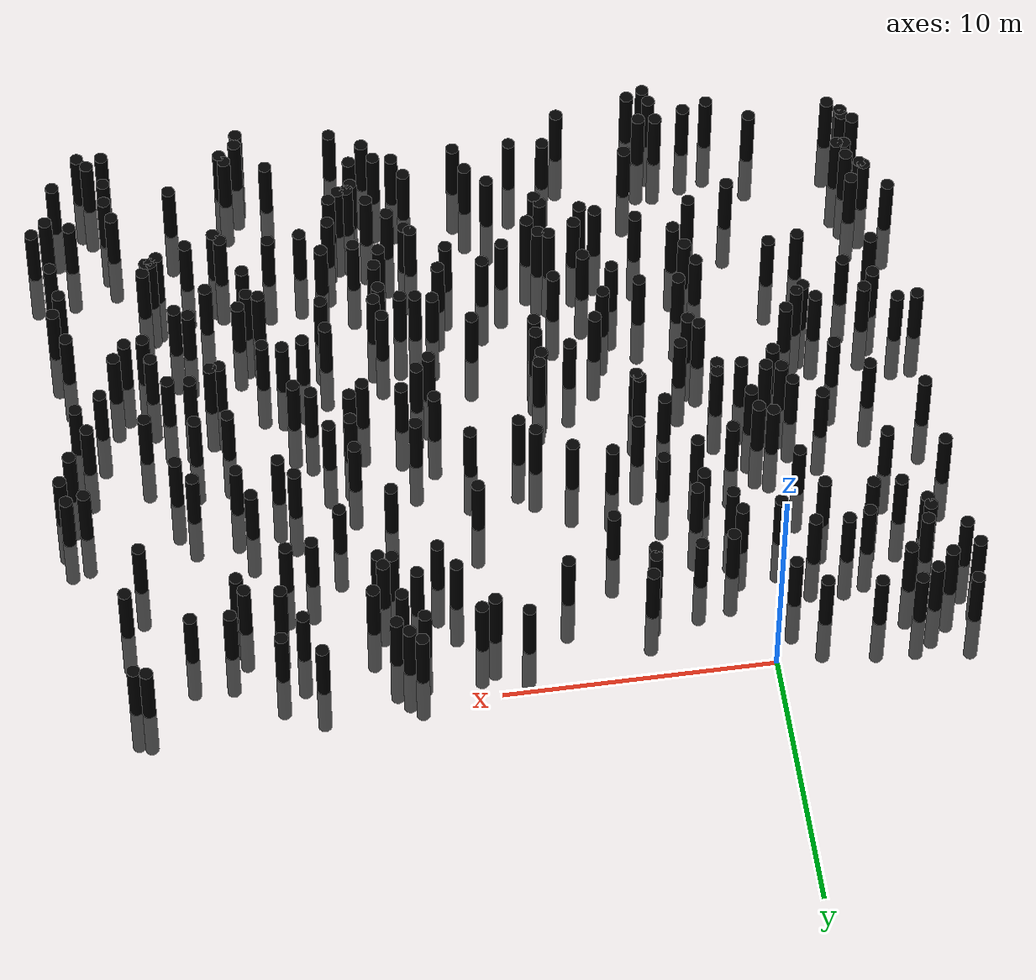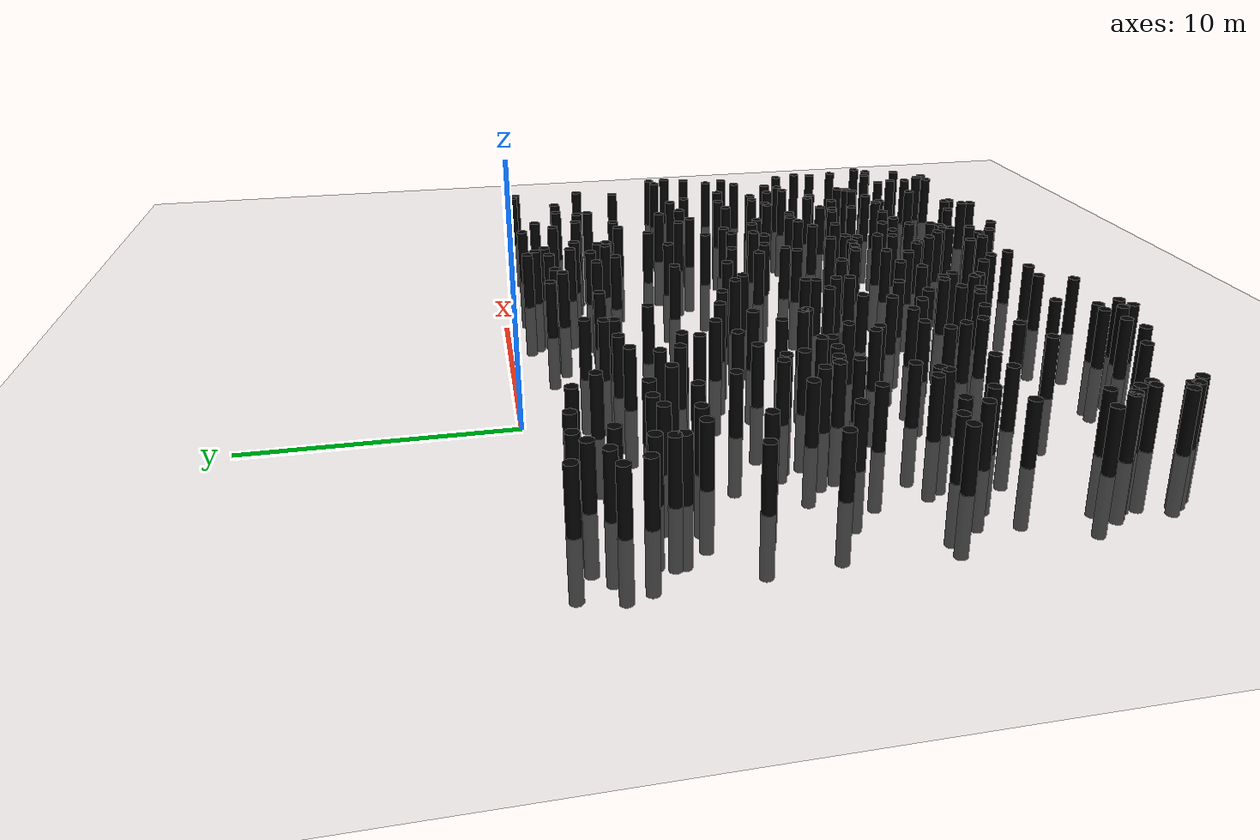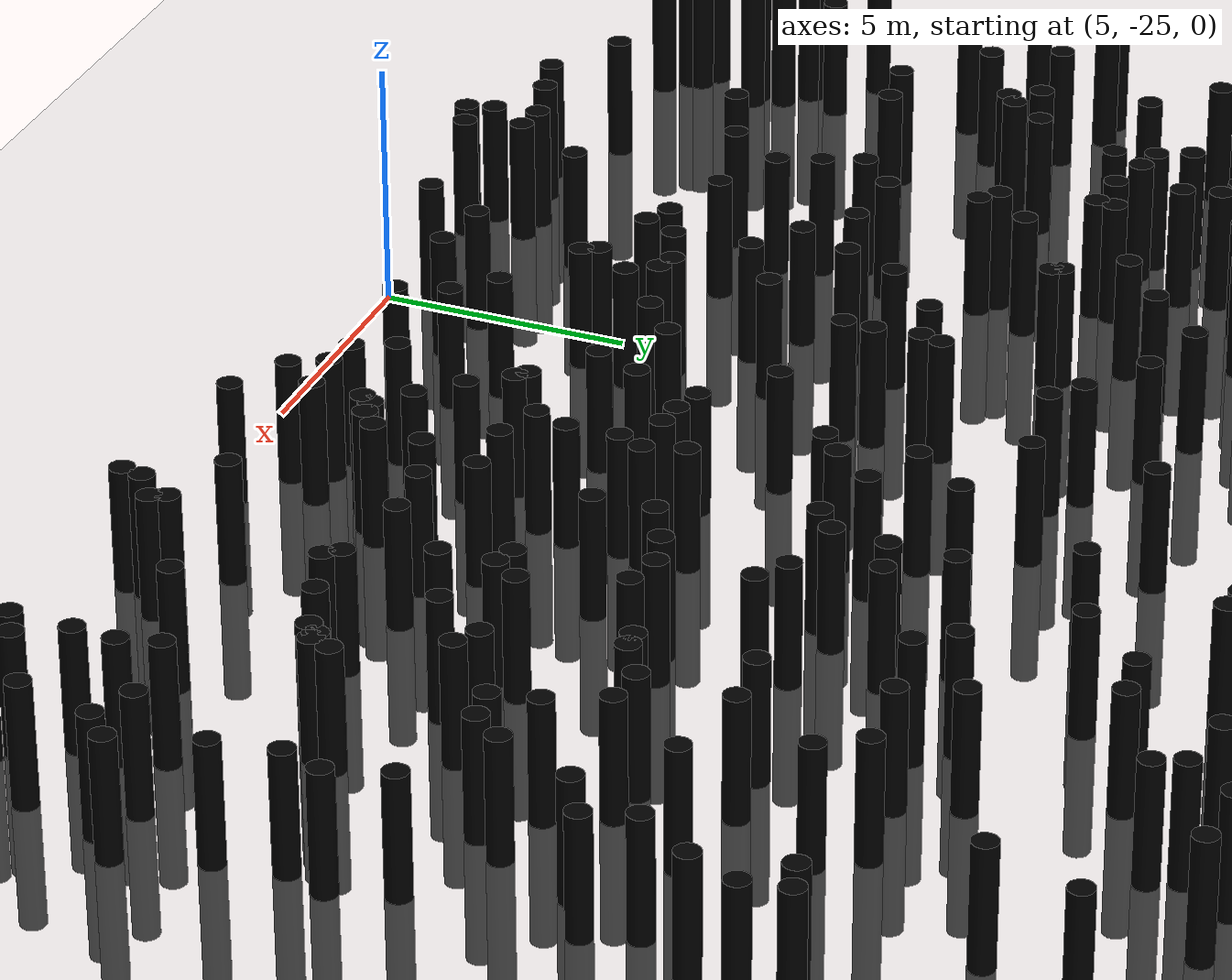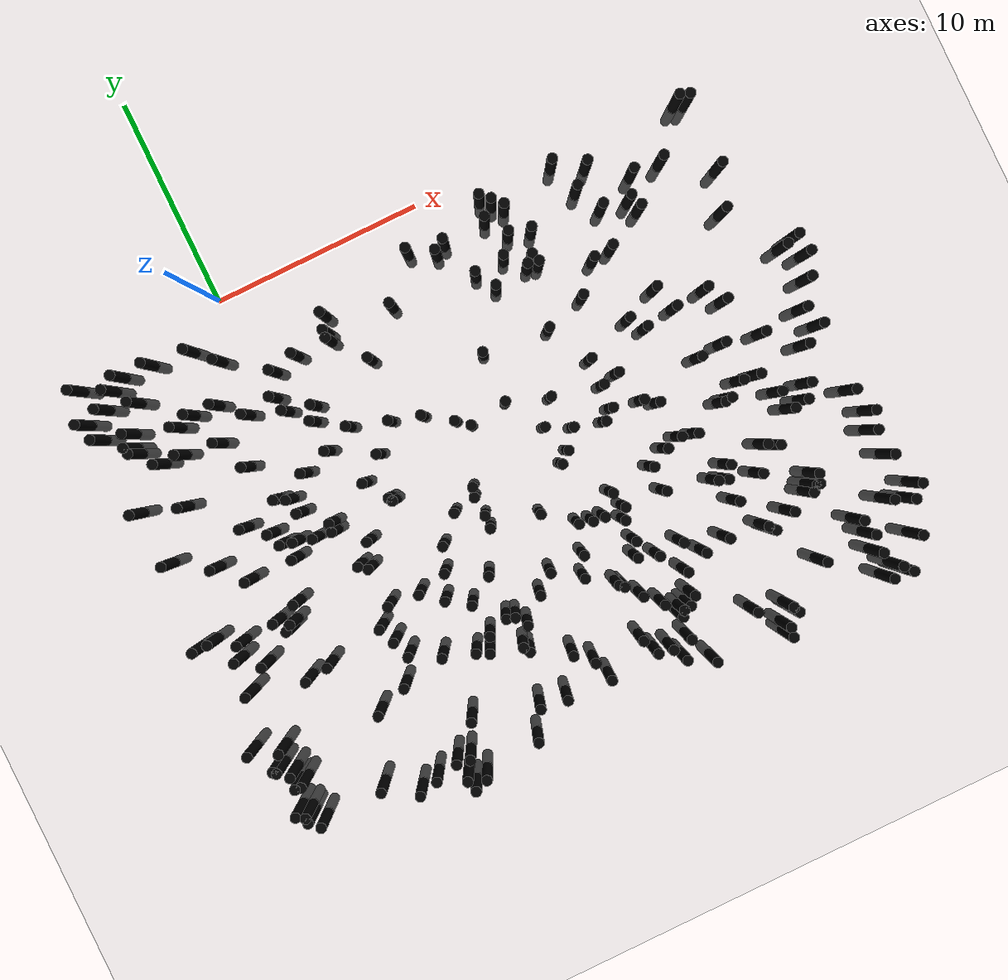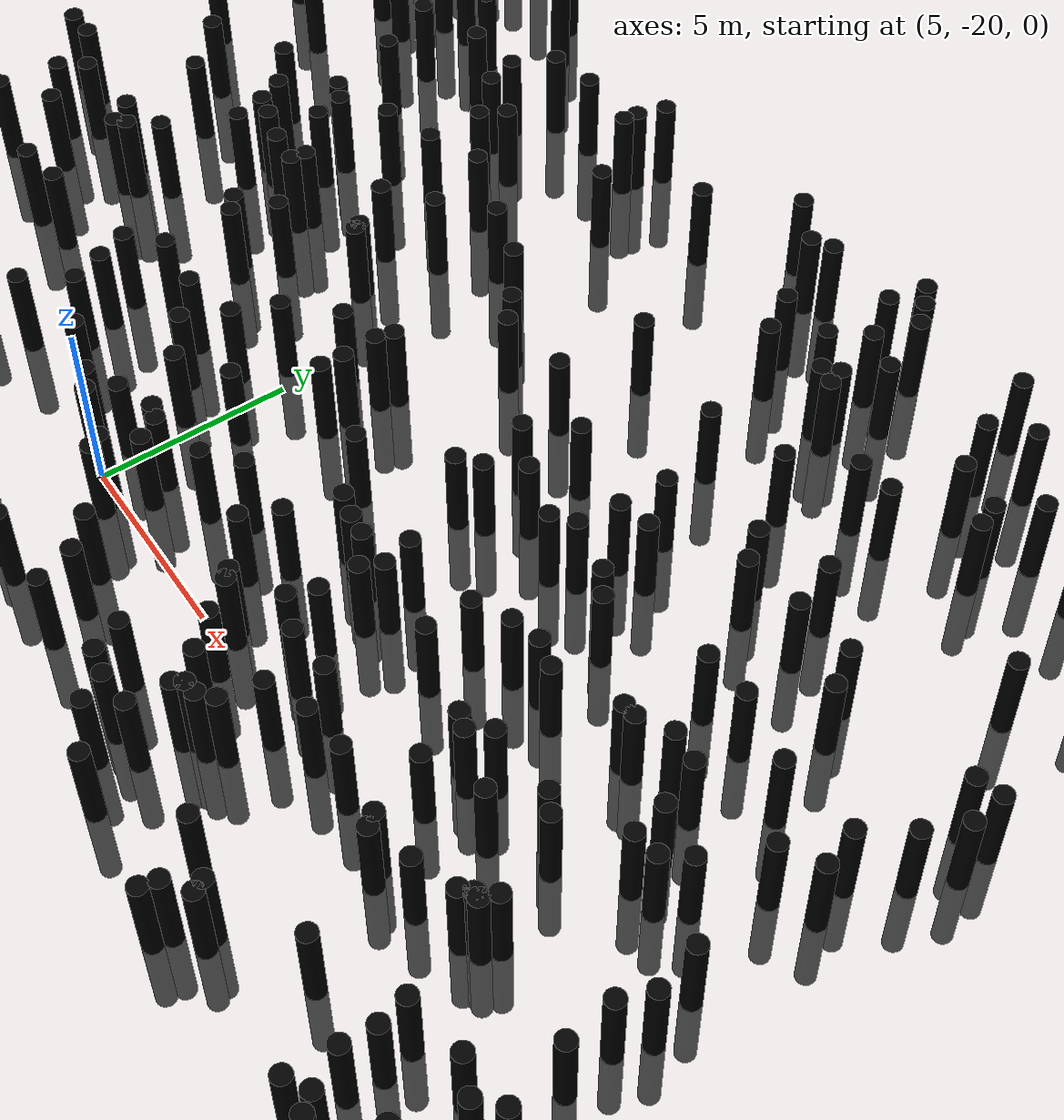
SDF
<sdf version="1.6">
 <world name="huge">
  <include><uri>model://ground_plane</uri></include>
  <include><uri>model://pole</uri><name>pole3</name><pose>14.09 -11.19 0 0 0 0</pose></include>
  <include><uri>model://pole</uri><name>pole19</name><pose>12.08 -23.81 0 0 0 0</pose></include>
  <include><uri>model://pole</uri><name>pole20</name><pose>0.73 -13.72 0 0 0 0</pose></include>
  <include><uri>model://pole</uri><name>pole23</name><pose>21.9 -24.55 0 0 0 0</pose></include>
  <include><uri>model://pole</uri><name>pole24</name><pose>22.41 -15.11 0 0 0 0</pose></include>
  <include><uri>model://pole</uri><name>pole30</name><pose>-0.55 -11.74 0 0 0 0</pose></include>
  <include><uri>model://pole</uri><name>pole31</name><pose>-6.48 -20.39 0 0 0 0</pose></include>
  <include><uri>model://pole</uri><name>pole37</name><pose>22.82 -24.62 0 0 0 0</pose></include>
  <include><uri>model://pole</uri><name>pole39</name><pose>14.92 -19.9 0 0 0 0</pose></include>
  <include><uri>model://pole</uri><name>pole40</name><pose>18.7 -17.82 0 0 0 0</pose></include>
  <include><uri>model://pole</uri><name>pole43</name><pose>17.33 -23.74 0 0 0 0</pose></include>
  <include><uri>model://pole</uri><name>pole49</name><pose>5.61 -13.44 0 0 0 0</pose></include>
  <include><uri>model://pole</uri><name>pole50</name><pose>-7.34 -19.17 0 0 0 0</pose></include>
  <include><uri>model://pole</uri><name>pole52</name><pose>11.39 -13.15 0 0 0 0</pose></include>
  <include><uri>model://pole</uri><name>pole55</name><pose>15.82 -23.26 0 0 0 0</pose></include>
  <include><uri>model://pole</uri><name>pole65</name><pose>-1.07 -2.62 0 0 0 0</pose></include>
  <include><uri>model://pole</uri><name>pole66</name><pose>24.13 -18.29 0 0 0 0</pose></include>
  <include><uri>model://pole</uri><name>pole68</name><pose>-0.86 -9.67 0 0 0 0</pose></include>
  <include><uri>model://pole</uri><name>pole70</name><pose>14.52 -16.67 0 0 0 0</pose></include>
  <include><uri>model://pole</uri><name>pole73</name><pose>19.22 -19.96 0 0 0 0</pose></include>
  <include><uri>model://pole</uri><name>pole74</name><pose>20.77 -19.32 0 0 0 0</pose></include>
  <include><uri>model://pole</uri><name>pole75</name><pose>6.54 -23.1 0 0 0 0</pose></include>
  <include><uri>model://pole</uri><name>pole78</name><pose>11.55 -20.43 0 0 0 0</pose></include>
  <include><uri>model://pole</uri><name>pole80</name><pose>19.45 -3.15 0 0 0 0</pose></include>
  <include><uri>model://pole</uri><name>pole81</name><pose>3.86 -3.96 0 0 0 0</pose></include>
  <include><uri>model://pole</uri><name>pole86</name><pose>18.83 -4.16 0 0 0 0</pose></include>
  <include><uri>model://pole</uri><name>pole87</name><pose>10.99 -19.68 0 0 0 0</pose></include>
  <include><uri>model://pole</uri><name>pole91</name><pose>-2.07 -4.36 0 0 0 0</pose></include>
  <include><uri>model://pole</uri><name>pole92</name><pose>18.54 -11.96 0 0 0 0</pose></include>
  <include><uri>model://pole</uri><name>pole94</name><pose>3.38 -11.76 0 0 0 0</pose></include>
  <include><uri>model://pole</uri><name>pole98</name><pose>0.35 -11.84 0 0 0 0</pose></include>
  <include><uri>model://pole</uri><name>pole100</name><pose>-3.1 -14.72 0 0 0 0</pose></include>
  <include><uri>model://pole</uri><name>pole103</name><pose>0.97 -4.14 0 0 0 0</pose></include>
  <include><uri>model://pole</uri><name>pole104</name><pose>-6.27 -16.77 0 0 0 0</pose></include>
  <include><uri>model://pole</uri><name>pole105</name><pose>17.13 -5.79 0 0 0 0</pose></include>
  <include><uri>model://pole</uri><name>pole107</name><pose>12.56 -4.09 0 0 0 0</pose></include>
  <include><uri>model://pole</uri><name>pole108</name><pose>20.13 -9.3 0 0 0 0</pose></include>
  <include><uri>model://pole</uri><name>pole109</name><pose>22.49 -24.22 0 0 0 0</pose></include>
  <include><uri>model://pole</uri><name>pole111</name><pose>-3.77 -14.37 0 0 0 0</pose></include>
  <include><uri>model://pole</uri><name>pole117</name><pose>17.47 -24.04 0 0 0 0</pose></include>
  <include><uri>model://pole</uri><name>pole121</name><pose>10.9 -11.76 0 0 0 0</pose></include>
  <include><uri>model://pole</uri><name>pole122</name><pose>18.09 -8.3 0 0 0 0</pose></include>
  <include><uri>model://pole</uri><name>pole123</name><pose>1.77 -24.71 0 0 0 0</pose></include>
  <include><uri>model://pole</uri><name>pole126</name><pose>2.32 -19.0 0 0 0 0</pose></include>
  <include><uri>model://pole</uri><name>pole129</name><pose>11.05 -22.98 0 0 0 0</pose></include>
  <include><uri>model://pole</uri><name>pole133</name><pose>9.57 -18.58 0 0 0 0</pose></include>
  <include><uri>model://pole</uri><name>pole139</name><pose>4.12 -2.82 0 0 0 0</pose></include>
  <include><uri>model://pole</uri><name>pole146</name><pose>1.61 -6.96 0 0 0 0</pose></include>
  <include><uri>model://pole</uri><name>pole147</name><pose>-2.68 -5.98 0 0 0 0</pose></include>
  <include><uri>model://pole</uri><name>pole154</name><pose>-6.06 -21.39 0 0 0 0</pose></include>
  <include><uri>model://pole</uri><name>pole157</name><pose>13.24 -24.46 0 0 0 0</pose></include>
  <include><uri>model://pole</uri><name>pole161</name><pose>-5.78 -21.42 0 0 0 0</pose></include>
  <include><uri>model://pole</uri><name>pole163</name><pose>12.91 -21.75 0 0 0 0</pose></include>
  <include><uri>model://pole</uri><name>pole165</name><pose>0.47 -5.21 0 0 0 0</pose></include>
  <include><uri>model://pole</uri><name>pole166</name><pose>4.56 -24.22 0 0 0 0</pose></include>
  <include><uri>model://pole</uri><name>pole169</name><pose>17.9 -20.04 0 0 0 0</pose></include>
  <include><uri>model://pole</uri><name>pole170</name><pose>4.05 -15.67 0 0 0 0</pose></include>
  <include><uri>model://pole</uri><name>pole171</name><pose>-2.05 -1.66 0 0 0 0</pose></include>
  <include><uri>model://pole</uri><name>pole175</name><pose>12.53 -2.18 0 0 0 0</pose></include>
  <include><uri>model://pole</uri><name>pole176</name><pose>1.96 -6.33 0 0 0 0</pose></include>
  <include><uri>model://pole</uri><name>pole182</name><pose>0.7 -6.0 0 0 0 0</pose></include>
  <include><uri>model://pole</uri><name>pole188</name><pose>12.31 -17.04 0 0 0 0</pose></include>
  <include><uri>model://pole</uri><name>pole190</name><pose>11.11 -4.2 0 0 0 0</pose></include>
  <include><uri>model://pole</uri><name>pole199</name><pose>19.46 -16.73 0 0 0 0</pose></include>
  <include><uri>model://pole</uri><name>pole200</name><pose>-1.19 -24.07 0 0 0 0</pose></include>
  <include><uri>model://pole</uri><name>pole202</name><pose>-3.37 -14.94 0 0 0 0</pose></include>
  <include><uri>model://pole</uri><name>pole203</name><pose>-5.47 -5.68 0 0 0 0</pose></include>
  <include><uri>model://pole</uri><name>pole205</name><pose>5.28 -22.93 0 0 0 0</pose></include>
  <include><uri>model://pole</uri><name>pole206</name><pose>16.13 -19.78 0 0 0 0</pose></include>
  <include><uri>model://pole</uri><name>pole207</name><pose>13.87 -5.01 0 0 0 0</pose></include>
  <include><uri>model://pole</uri><name>pole211</name><pose>0.98 -24.4 0 0 0 0</pose></include>
  <include><uri>model://pole</uri><name>pole212</name><pose>12.56 -16.51 0 0 0 0</pose></include>
  <include><uri>model://pole</uri><name>pole220</name><pose>18.52 -9.46 0 0 0 0</pose></include>
  <include><uri>model://pole</uri><name>pole222</name><pose>3.54 -16.79 0 0 0 0</pose></include>
  <include><uri>model://pole</uri><name>pole225</name><pose>2.26 -22.12 0 0 0 0</pose></include>
  <include><uri>model://pole</uri><name>pole227</name><pose>13.46 -12.71 0 0 0 0</pose></include>
  <include><uri>model://pole</uri><name>pole231</name><pose>16.79 -17.24 0 0 0 0</pose></include>
  <include><uri>model://pole</uri><name>pole232</name><pose>-5.34 -7.9 0 0 0 0</pose></include>
  <include><uri>model://pole</uri><name>pole234</name><pose>22.02 -22.44 0 0 0 0</pose></include>
  <include><uri>model://pole</uri><name>pole235</name><pose>9.92 -2.55 0 0 0 0</pose></include>
  <include><uri>model://pole</uri><name>pole237</name><pose>18.93 -14.18 0 0 0 0</pose></include>
  <include><uri>model://pole</uri><name>pole242</name><pose>12.08 -18.78 0 0 0 0</pose></include>
  <include><uri>model://pole</uri><name>pole243</name><pose>-6.32 -4.46 0 0 0 0</pose></include>
  <include><uri>model://pole</uri><name>pole244</name><pose>-0.26 -23.82 0 0 0 0</pose></include>
  <include><uri>model://pole</uri><name>pole246</name><pose>22.39 -6.49 0 0 0 0</pose></include>
  <include><uri>model://pole</uri><name>pole250</name><pose>12.05 -12.32 0 0 0 0</pose></include>
  <include><uri>model://pole</uri><name>pole252</name><pose>-6.25 -4.79 0 0 0 0</pose></include>
  <include><uri>model://pole</uri><name>pole256</name><pose>4.65 -19.04 0 0 0 0</pose></include>
  <include><uri>model://pole</uri><name>pole257</name><pose>16.75 -24.93 0 0 0 0</pose></include>
  <include><uri>model://pole</uri><name>pole258</name><pose>6.72 -13.21 0 0 0 0</pose></include>
  <include><uri>model://pole</uri><name>pole260</name><pose>12.25 -21.17 0 0 0 0</pose></include>
  <include><uri>model://pole</uri><name>pole261</name><pose>16.87 -2.73 0 0 0 0</pose></include>
  <include><uri>model://pole</uri><name>pole272</name><pose>11.73 -23.13 0 0 0 0</pose></include>
  <include><uri>model://pole</uri><name>pole278</name><pose>0.22 -19.47 0 0 0 0</pose></include>
  <include><uri>model://pole</uri><name>pole281</name><pose>16.42 -9.02 0 0 0 0</pose></include>
  <include><uri>model://pole</uri><name>pole286</name><pose>2.18 -3.9 0 0 0 0</pose></include>
  <include><uri>model://pole</uri><name>pole288</name><pose>7.41 -9.76 0 0 0 0</pose></include>
  <include><uri>model://pole</uri><name>pole289</name><pose>12.74 -21.99 0 0 0 0</pose></include>
  <include><uri>model://pole</uri><name>pole290</name><pose>16.84 -24.49 0 0 0 0</pose></include>
  <include><uri>model://pole</uri><name>pole293</name><pose>8.31 -17.7 0 0 0 0</pose></include>
  <include><uri>model://pole</uri><name>pole294</name><pose>21.96 -23.3 0 0 0 0</pose></include>
  <include><uri>model://pole</uri><name>pole296</name><pose>13.37 -4.9 0 0 0 0</pose></include>
  <include><uri>model://pole</uri><name>pole297</name><pose>7.98 -10.25 0 0 0 0</pose></include>
  <include><uri>model://pole</uri><name>pole298</name><pose>0.23 -8.89 0 0 0 0</pose></include>
  <include><uri>model://pole</uri><name>pole303</name><pose>1.13 -24.95 0 0 0 0</pose></include>
  <include><uri>model://pole</uri><name>pole305</name><pose>-7.44 -1.06 0 0 0 0</pose></include>
  <include><uri>model://pole</uri><name>pole307</name><pose>13.01 -7.86 0 0 0 0</pose></include>
  <include><uri>model://pole</uri><name>pole310</name><pose>-7.54 -13.97 0 0 0 0</pose></include>
  <include><uri>model://pole</uri><name>pole314</name><pose>24.06 -16.25 0 0 0 0</pose></include>
  <include><uri>model://pole</uri><name>pole319</name><pose>21.95 -15.72 0 0 0 0</pose></include>
  <include><uri>model://pole</uri><name>pole322</name><pose>9.86 -7.56 0 0 0 0</pose></include>
  <include><uri>model://pole</uri><name>pole330</name><pose>6.76 -14.75 0 0 0 0</pose></include>
  <include><uri>model://pole</uri><name>pole333</name><pose>11.0 -16.45 0 0 0 0</pose></include>
  <include><uri>model://pole</uri><name>pole340</name><pose>23.08 -13.52 0 0 0 0</pose></include>
  <include><uri>model://pole</uri><name>pole346</name><pose>21.82 -21.65 0 0 0 0</pose></include>
  <include><uri>model://pole</uri><name>pole347</name><pose>5.78 -20.14 0 0 0 0</pose></include>
  <include><uri>model://pole</uri><name>pole351</name><pose>9.98 -17.65 0 0 0 0</pose></include>
  <include><uri>model://pole</uri><name>pole352</name><pose>6.38 -19.35 0 0 0 0</pose></include>
  <include><uri>model://pole</uri><name>pole354</name><pose>24.04 -12.98 0 0 0 0</pose></include>
  <include><uri>model://pole</uri><name>pole356</name><pose>-0.98 -5.37 0 0 0 0</pose></include>
  <include><uri>model://pole</uri><name>pole358</name><pose>16.17 -5.91 0 0 0 0</pose></include>
  <include><uri>model://pole</uri><name>pole363</name><pose>13.73 -4.58 0 0 0 0</pose></include>
  <include><uri>model://pole</uri><name>pole368</name><pose>19.55 -22.6 0 0 0 0</pose></include>
  <include><uri>model://pole</uri><name>pole370</name><pose>-6.19 -22.74 0 0 0 0</pose></include>
  <include><uri>model://pole</uri><name>pole371</name><pose>10.44 -2.26 0 0 0 0</pose></include>
  <include><uri>model://pole</uri><name>pole374</name><pose>24.78 -8.93 0 0 0 0</pose></include>
  <include><uri>model://pole</uri><name>pole377</name><pose>4.51 -14.55 0 0 0 0</pose></include>
  <include><uri>model://pole</uri><name>pole378</name><pose>13.16 -1.59 0 0 0 0</pose></include>
  <include><uri>model://pole</uri><name>pole381</name><pose>-4.09 -4.51 0 0 0 0</pose></include>
  <include><uri>model://pole</uri><name>pole385</name><pose>1.16 -15.9 0 0 0 0</pose></include>
  <include><uri>model://pole</uri><name>pole391</name><pose>0.38 -16.65 0 0 0 0</pose></include>
  <include><uri>model://pole</uri><name>pole392</name><pose>5.77 -16.63 0 0 0 0</pose></include>
  <include><uri>model://pole</uri><name>pole396</name><pose>-1.33 -20.07 0 0 0 0</pose></include>
  <include><uri>model://pole</uri><name>pole398</name><pose>14.21 -19.05 0 0 0 0</pose></include>
  <include><uri>model://pole</uri><name>pole402</name><pose>-5.24 -11.02 0 0 0 0</pose></include>
  <include><uri>model://pole</uri><name>pole404</name><pose>12.99 -19.13 0 0 0 0</pose></include>
  <include><uri>model://pole</uri><name>pole409</name><pose>3.28 -11.58 0 0 0 0</pose></include>
  <include><uri>model://pole</uri><name>pole410</name><pose>23.88 -23.36 0 0 0 0</pose></include>
  <include><uri>model://pole</uri><name>pole413</name><pose>9.81 -9.97 0 0 0 0</pose></include>
  <include><uri>model://pole</uri><name>pole416</name><pose>-5.3 -2.68 0 0 0 0</pose></include>
  <include><uri>model://pole</uri><name>pole418</name><pose>11.56 -16.51 0 0 0 0</pose></include>
  <include><uri>model://pole</uri><name>pole427</name><pose>-6.12 -3.86 0 0 0 0</pose></include>
  <include><uri>model://pole</uri><name>pole428</name><pose>24.43 -17.46 0 0 0 0</pose></include>
  <include><uri>model://pole</uri><name>pole432</name><pose>-2.28 -10.7 0 0 0 0</pose></include>
  <include><uri>model://pole</uri><name>pole439</name><pose>23.71 -12.01 0 0 0 0</pose></include>
  <include><uri>model://pole</uri><name>pole441</name><pose>4.33 -19.74 0 0 0 0</pose></include>
  <include><uri>model://pole</uri><name>pole445</name><pose>0.41 -11.45 0 0 0 0</pose></include>
  <include><uri>model://pole</uri><name>pole446</name><pose>9.05 -15.16 0 0 0 0</pose></include>
  <include><uri>model://pole</uri><name>pole453</name><pose>6.04 -18.79 0 0 0 0</pose></include>
  <include><uri>model://pole</uri><name>pole454</name><pose>20.93 -18.9 0 0 0 0</pose></include>
  <include><uri>model://pole</uri><name>pole456</name><pose>-5.45 -1.31 0 0 0 0</pose></include>
  <include><uri>model://pole</uri><name>pole457</name><pose>22.68 -1.09 0 0 0 0</pose></include>
  <include><uri>model://pole</uri><name>pole460</name><pose>1.1 -14.02 0 0 0 0</pose></include>
  <include><uri>model://pole</uri><name>pole461</name><pose>-7.11 -9.94 0 0 0 0</pose></include>
  <include><uri>model://pole</uri><name>pole462</name><pose>21.57 -12.2 0 0 0 0</pose></include>
  <include><uri>model://pole</uri><name>pole464</name><pose>18.13 -20.33 0 0 0 0</pose></include>
  <include><uri>model://pole</uri><name>pole470</name><pose>12.34 -18.09 0 0 0 0</pose></include>
  <include><uri>model://pole</uri><name>pole471</name><pose>-4.44 -5.72 0 0 0 0</pose></include>
  <include><uri>model://pole</uri><name>pole472</name><pose>2.62 -16.02 0 0 0 0</pose></include>
  <include><uri>model://pole</uri><name>pole474</name><pose>20.35 -19.55 0 0 0 0</pose></include>
  <include><uri>model://pole</uri><name>pole487</name><pose>-5.63 -14.55 0 0 0 0</pose></include>
  <include><uri>model://pole</uri><name>pole492</name><pose>14.49 -15.46 0 0 0 0</pose></include>
  <include><uri>model://pole</uri><name>pole494</name><pose>0.86 -23.51 0 0 0 0</pose></include>
  <include><uri>model://pole</uri><name>pole496</name><pose>7.07 -3.8 0 0 0 0</pose></include>
  <include><uri>model://pole</uri><name>pole500</name><pose>13.26 -21.7 0 0 0 0</pose></include>
  <include><uri>model://pole</uri><name>pole508</name><pose>-7.49 -3.5 0 0 0 0</pose></include>
  <include><uri>model://pole</uri><name>pole509</name><pose>24.86 -21.27 0 0 0 0</pose></include>
  <include><uri>model://pole</uri><name>pole520</name><pose>2.95 -7.87 0 0 0 0</pose></include>
  <include><uri>model://pole</uri><name>pole521</name><pose>24.12 -9.12 0 0 0 0</pose></include>
  <include><uri>model://pole</uri><name>pole522</name><pose>-6.61 -20.27 0 0 0 0</pose></include>
  <include><uri>model://pole</uri><name>pole523</name><pose>-2.45 -17.16 0 0 0 0</pose></include>
  <include><uri>model://pole</uri><name>pole526</name><pose>-6.07 -15.19 0 0 0 0</pose></include>
  <include><uri>model://pole</uri><name>pole527</name><pose>5.15 -5.55 0 0 0 0</pose></include>
  <include><uri>model://pole</uri><name>pole531</name><pose>10.7 -22.19 0 0 0 0</pose></include>
  <include><uri>model://pole</uri><name>pole536</name><pose>-6.09 -1.71 0 0 0 0</pose></include>
  <include><uri>model://pole</uri><name>pole539</name><pose>0.69 -17.45 0 0 0 0</pose></include>
  <include><uri>model://pole</uri><name>pole540</name><pose>20.55 -13.79 0 0 0 0</pose></include>
  <include><uri>model://pole</uri><name>pole541</name><pose>-2.01 -7.5 0 0 0 0</pose></include>
  <include><uri>model://pole</uri><name>pole542</name><pose>14.1 -9.9 0 0 0 0</pose></include>
  <include><uri>model://pole</uri><name>pole543</name><pose>7.62 -21.44 0 0 0 0</pose></include>
  <include><uri>model://pole</uri><name>pole548</name><pose>4.54 -17.48 0 0 0 0</pose></include>
  <include><uri>model://pole</uri><name>pole550</name><pose>19.05 -4.73 0 0 0 0</pose></include>
  <include><uri>model://pole</uri><name>pole551</name><pose>2.51 -10.48 0 0 0 0</pose></include>
  <include><uri>model://pole</uri><name>pole554</name><pose>16.95 -9.71 0 0 0 0</pose></include>
  <include><uri>model://pole</uri><name>pole555</name><pose>-6.04 -19.67 0 0 0 0</pose></include>
  <include><uri>model://pole</uri><name>pole557</name><pose>19.77 -11.85 0 0 0 0</pose></include>
  <include><uri>model://pole</uri><name>pole559</name><pose>-6.03 -20.82 0 0 0 0</pose></include>
  <include><uri>model://pole</uri><name>pole560</name><pose>14.91 -10.99 0 0 0 0</pose></include>
  <include><uri>model://pole</uri><name>pole563</name><pose>17.54 -3.95 0 0 0 0</pose></include>
  <include><uri>model://pole</uri><name>pole571</name><pose>16.91 -14.97 0 0 0 0</pose></include>
  <include><uri>model://pole</uri><name>pole573</name><pose>-6.18 -22.98 0 0 0 0</pose></include>
  <include><uri>model://pole</uri><name>pole574</name><pose>-3.3 -4.27 0 0 0 0</pose></include>
  <include><uri>model://pole</uri><name>pole575</name><pose>24.33 -19.59 0 0 0 0</pose></include>
  <include><uri>model://pole</uri><name>pole578</name><pose>14.99 -7.21 0 0 0 0</pose></include>
  <include><uri>model://pole</uri><name>pole579</name><pose>5.65 -18.67 0 0 0 0</pose></include>
  <include><uri>model://pole</uri><name>pole580</name><pose>19.74 -13.7 0 0 0 0</pose></include>
  <include><uri>model://pole</uri><name>pole582</name><pose>16.35 -1.21 0 0 0 0</pose></include>
  <include><uri>model://pole</uri><name>pole584</name><pose>19.95 -17.01 0 0 0 0</pose></include>
  <include><uri>model://pole</uri><name>pole592</name><pose>13.63 -21.38 0 0 0 0</pose></include>
  <include><uri>model://pole</uri><name>pole595</name><pose>13.57 -2.05 0 0 0 0</pose></include>
  <include><uri>model://pole</uri><name>pole597</name><pose>8.36 -22.15 0 0 0 0</pose></include>
  <include><uri>model://pole</uri><name>pole599</name><pose>15.4 -14.99 0 0 0 0</pose></include>
  <include><uri>model://pole</uri><name>pole606</name><pose>-6.75 -2.34 0 0 0 0</pose></include>
  <include><uri>model://pole</uri><name>pole609</name><pose>6.85 -12.76 0 0 0 0</pose></include>
  <include><uri>model://pole</uri><name>pole613</name><pose>15.39 -12.57 0 0 0 0</pose></include>
  <include><uri>model://pole</uri><name>pole614</name><pose>-6.57 -22.51 0 0 0 0</pose></include>
  <include><uri>model://pole</uri><name>pole615</name><pose>14.23 -3.51 0 0 0 0</pose></include>
  <include><uri>model://pole</uri><name>pole618</name><pose>18.59 -14.22 0 0 0 0</pose></include>
  <include><uri>model://pole</uri><name>pole619</name><pose>13.81 -20.32 0 0 0 0</pose></include>
  <include><uri>model://pole</uri><name>pole620</name><pose>-5.06 -15.89 0 0 0 0</pose></include>
  <include><uri>model://pole</uri><name>pole629</name><pose>16.18 -14.78 0 0 0 0</pose></include>
  <include><uri>model://pole</uri><name>pole630</name><pose>-2.59 -14.0 0 0 0 0</pose></include>
  <include><uri>model://pole</uri><name>pole645</name><pose>20.88 -3.21 0 0 0 0</pose></include>
  <include><uri>model://pole</uri><name>pole647</name><pose>-7.81 -2.6 0 0 0 0</pose></include>
  <include><uri>model://pole</uri><name>pole649</name><pose>24.3 -21.78 0 0 0 0</pose></include>
  <include><uri>model://pole</uri><name>pole651</name><pose>13.22 -3.21 0 0 0 0</pose></include>
  <include><uri>model://pole</uri><name>pole653</name><pose>12.75 -1.19 0 0 0 0</pose></include>
  <include><uri>model://pole</uri><name>pole654</name><pose>5.96 -20.44 0 0 0 0</pose></include>
  <include><uri>model://pole</uri><name>pole663</name><pose>15.99 -12.98 0 0 0 0</pose></include>
  <include><uri>model://pole</uri><name>pole666</name><pose>-3.28 -9.95 0 0 0 0</pose></include>
  <include><uri>model://pole</uri><name>pole668</name><pose>17.22 -17.39 0 0 0 0</pose></include>
  <include><uri>model://pole</uri><name>pole669</name><pose>-4.09 -12.17 0 0 0 0</pose></include>
  <include><uri>model://pole</uri><name>pole670</name><pose>3.78 -19.47 0 0 0 0</pose></include>
  <include><uri>model://pole</uri><name>pole672</name><pose>-7.38 -7.26 0 0 0 0</pose></include>
  <include><uri>model://pole</uri><name>pole674</name><pose>1.49 -23.59 0 0 0 0</pose></include>
  <include><uri>model://pole</uri><name>pole676</name><pose>11.74 -10.66 0 0 0 0</pose></include>
  <include><uri>model://pole</uri><name>pole682</name><pose>21.06 -14.9 0 0 0 0</pose></include>
  <include><uri>model://pole</uri><name>pole683</name><pose>-6.79 -13.95 0 0 0 0</pose></include>
  <include><uri>model://pole</uri><name>pole685</name><pose>-1.42 -11.5 0 0 0 0</pose></include>
  <include><uri>model://pole</uri><name>pole686</name><pose>-1.36 -9.43 0 0 0 0</pose></include>
  <include><uri>model://pole</uri><name>pole689</name><pose>-1.79 -12.18 0 0 0 0</pose></include>
  <include><uri>model://pole</uri><name>pole690</name><pose>20.67 -10.14 0 0 0 0</pose></include>
  <include><uri>model://pole</uri><name>pole693</name><pose>-4.0 -1.39 0 0 0 0</pose></include>
  <include><uri>model://pole</uri><name>pole694</name><pose>23.43 -21.39 0 0 0 0</pose></include>
  <include><uri>model://pole</uri><name>pole699</name><pose>7.47 -18.4 0 0 0 0</pose></include>
  <include><uri>model://pole</uri><name>pole701</name><pose>11.68 -5.14 0 0 0 0</pose></include>
  <include><uri>model://pole</uri><name>pole702</name><pose>-5.75 -23.41 0 0 0 0</pose></include>
  <include><uri>model://pole</uri><name>pole703</name><pose>10.88 -13.58 0 0 0 0</pose></include>
  <include><uri>model://pole</uri><name>pole704</name><pose>-0.7 -10.42 0 0 0 0</pose></include>
  <include><uri>model://pole</uri><name>pole706</name><pose>23.09 -4.61 0 0 0 0</pose></include>
  <include><uri>model://pole</uri><name>pole714</name><pose>-1.98 -11.36 0 0 0 0</pose></include>
  <include><uri>model://pole</uri><name>pole716</name><pose>3.9 -3.58 0 0 0 0</pose></include>
  <include><uri>model://pole</uri><name>pole719</name><pose>8.68 -23.15 0 0 0 0</pose></include>
  <include><uri>model://pole</uri><name>pole722</name><pose>1.56 -12.91 0 0 0 0</pose></include>
  <include><uri>model://pole</uri><name>pole727</name><pose>6.79 -14.14 0 0 0 0</pose></include>
  <include><uri>model://pole</uri><name>pole729</name><pose>3.64 -9.58 0 0 0 0</pose></include>
  <include><uri>model://pole</uri><name>pole731</name><pose>21.26 -15.82 0 0 0 0</pose></include>
  <include><uri>model://pole</uri><name>pole737</name><pose>24.92 -9.84 0 0 0 0</pose></include>
  <include><uri>model://pole</uri><name>pole740</name><pose>0.99 -18.3 0 0 0 0</pose></include>
  <include><uri>model://pole</uri><name>pole743</name><pose>12.65 -23.06 0 0 0 0</pose></include>
  <include><uri>model://pole</uri><name>pole746</name><pose>20.6 -19.31 0 0 0 0</pose></include>
  <include><uri>model://pole</uri><name>pole757</name><pose>-2.69 -23.18 0 0 0 0</pose></include>
  <include><uri>model://pole</uri><name>pole758</name><pose>6.17 -8.89 0 0 0 0</pose></include>
  <include><uri>model://pole</uri><name>pole766</name><pose>4.75 -8.46 0 0 0 0</pose></include>
  <include><uri>model://pole</uri><name>pole770</name><pose>23.12 -1.26 0 0 0 0</pose></include>
  <include><uri>model://pole</uri><name>pole771</name><pose>10.38 -16.28 0 0 0 0</pose></include>
  <include><uri>model://pole</uri><name>pole772</name><pose>17.24 -18.49 0 0 0 0</pose></include>
  <include><uri>model://pole</uri><name>pole781</name><pose>24.47 -10.88 0 0 0 0</pose></include>
  <include><uri>model://pole</uri><name>pole783</name><pose>12.34 -15.71 0 0 0 0</pose></include>
  <include><uri>model://pole</uri><name>pole787</name><pose>10.79 -19.5 0 0 0 0</pose></include>
  <include><uri>model://pole</uri><name>pole791</name><pose>17.59 -16.85 0 0 0 0</pose></include>
  <include><uri>model://pole</uri><name>pole792</name><pose>13.99 -12.29 0 0 0 0</pose></include>
  <include><uri>model://pole</uri><name>pole793</name><pose>8.77 -1.91 0 0 0 0</pose></include>
  <include><uri>model://pole</uri><name>pole794</name><pose>-3.57 -17.32 0 0 0 0</pose></include>
  <include><uri>model://pole</uri><name>pole795</name><pose>17.74 -1.93 0 0 0 0</pose></include>
  <include><uri>model://pole</uri><name>pole798</name><pose>1.61 -8.45 0 0 0 0</pose></include>
 </world>
</sdf>
